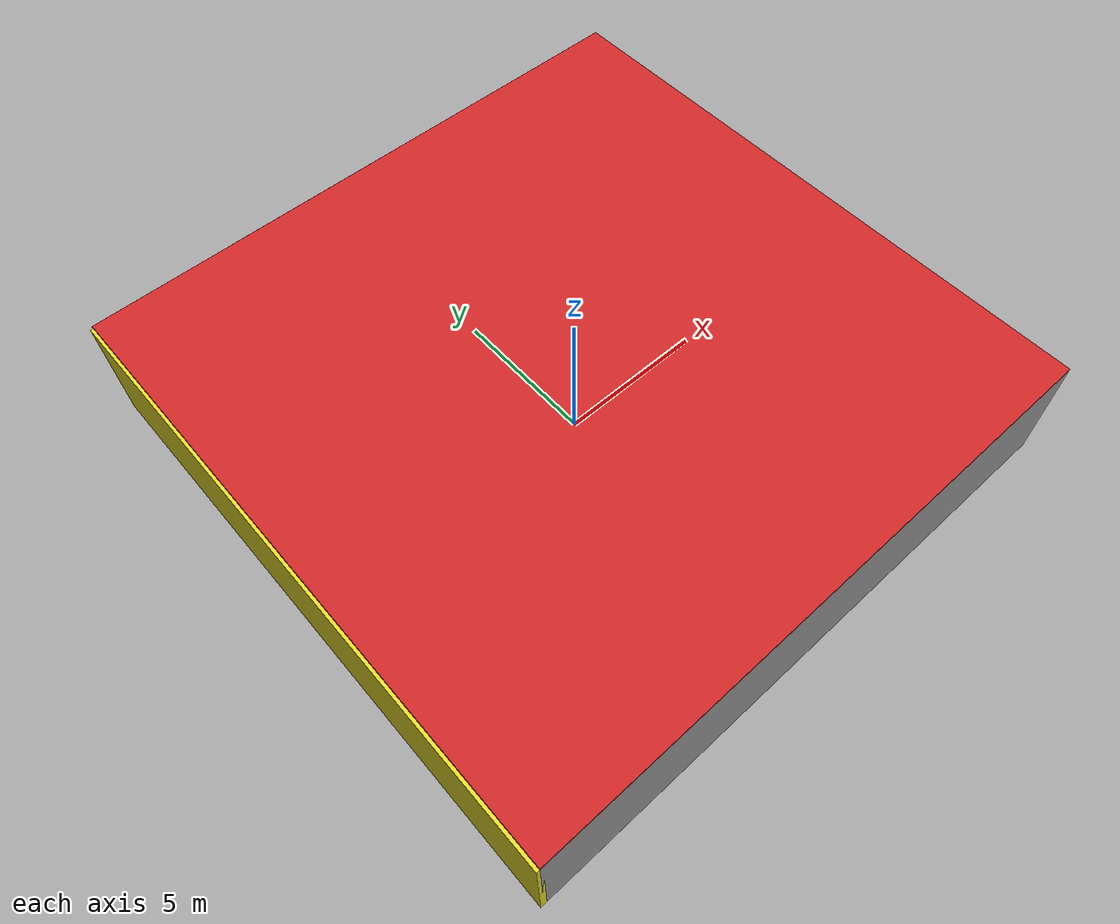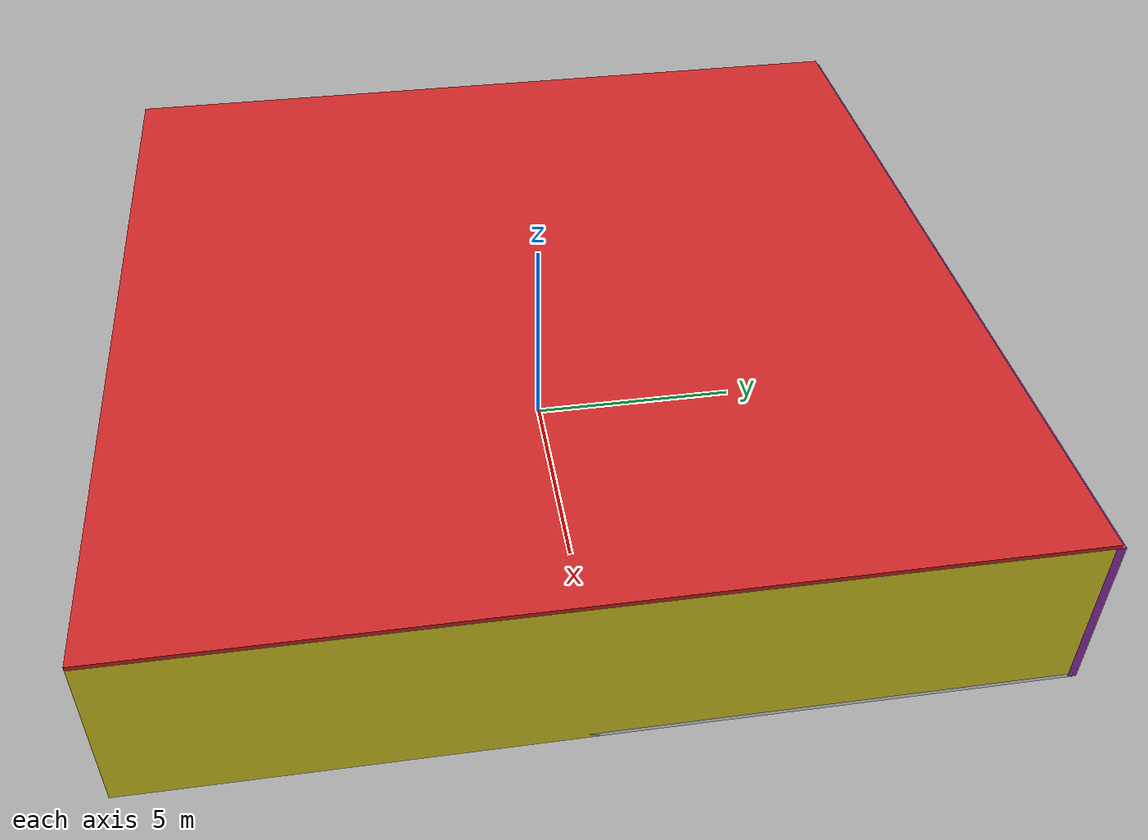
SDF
<sdf version="1.4">
 <world name="default">
  <physics type="ode">
   <max_step_size>0.001</max_step_size>
   <real_time_factor>1</real_time_factor>
   <real_time_update_rate>1000</real_time_update_rate>
   <gravity>0 0 -9.8</gravity>
  </physics>
  <scene><ambient>0.4 0.4 0.4 1</ambient><background>0.7 0.7 0.7 1</background><shadows>1</shadows></scene>
  <model name="Surrounding">
   <static>1</static>
   <link name="Ceiling">
    <collision name="Ceiling_Collision"><geometry><box><size>20 20 0.1</size></box></geometry></collision>
    <visual name="Ceiling_Visual">
     <geometry><box><size>20 20 0.1</size></box></geometry>
     <material>
      <script><uri>file://media/materials/scripts/gazebo.material</uri><name>Gazebo/RedBright</name></script>
     </material>
    </visual>
    <pose>0 0 4.05 0 0 0</pose>
   </link>
   <link name="Wall_South">
    <collision name="Wall_South_Collision">
     <geometry><box><size>20 0 4</size></box></geometry>
     <pose>0 0 2 0 -0 0</pose>
    </collision>
    <visual name="Wall_South_Visual">
     <pose>0 0 2 0 -0 0</pose>
     <geometry><box><size>20 0 4</size></box></geometry>
     <material>
      <script><uri>file://media/materials/scripts/gazebo.material</uri><name>Gazebo/Grey</name></script>
     </material>
    </visual>
    <velocity_decay><linear>0</linear><angular>0</angular></velocity_decay>
    <pose>0 -10 0 0 -0 0</pose>
   </link>
   <link name="Wall_East">
    <collision name="Wall_21_Collision">
     <geometry><box><size>20 0 4</size></box></geometry>
     <pose>0 0 2 0 -0 0</pose>
    </collision>
    <visual name="Wall_21_Visual">
     <pose>0 0 2 0 -0 0</pose>
     <geometry><box><size>20 0 4</size></box></geometry>
     <material>
      <script><uri>file://media/materials/scripts/gazebo.material</uri><name>Gazebo/YellowGlow</name></script>
     </material>
    </visual>
    <velocity_decay><linear>0</linear><angular>0</angular></velocity_decay>
    <pose>10 0 0 0 -0 1.5708</pose>
   </link>
   <link name="Wall_North">
    <collision name="Wall_22_Collision">
     <geometry><box><size>20 0.2 4</size></box></geometry>
     <pose>0 0 2 0 -0 0</pose>
    </collision>
    <visual name="Wall_22_Visual">
     <pose>0 0 2 0 -0 0</pose>
     <geometry><box><size>20 0.2 4</size></box></geometry>
     <material>
      <script><uri>file://media/materials/scripts/gazebo.material</uri><name>Gazebo/Purple</name></script>
     </material>
    </visual>
    <velocity_decay><linear>0</linear><angular>0</angular></velocity_decay>
    <pose>0 10 0 0 -0 0</pose>
   </link>
   <link name="Wall_West">
    <collision name="Wall_23_Collision">
     <geometry><box><size>20 0.2 4</size></box></geometry>
     <pose>0 0 2 0 -0 0</pose>
    </collision>
    <visual name="Wall_23_Visual">
     <pose>0 0 2 0 -0 0</pose>
     <geometry><box><size>20 0.2 4</size></box></geometry>
     <material>
      <script><uri>file://media/materials/scripts/gazebo.material</uri><name>Gazebo/Yellow</name></script>
     </material>
    </visual>
    <velocity_decay><linear>0</linear><angular>0</angular></velocity_decay>
    <pose>-10 0 0 0 0 -1.5708</pose>
   </link>
   <link name="Ground_link">
    <collision name="collision">
     <pose>0 0 .05 0 -0 0</pose>
     <geometry><box><size>20 20 0.1</size></box></geometry>
    </collision>
    <visual name="visual">
     <pose>0 0 .05 0 -0 0</pose>
     <geometry><box><size>20 20 0.1</size></box></geometry>
     <material>
      <script><uri>file://media/materials/scripts/gazebo.material</uri><name>Gazebo/White</name></script>
     </material>
    </visual>
   </link>
   <static>1</static>
  </model>
  <spherical_coordinates>
   <surface_model>EARTH_WGS84</surface_model>
   <latitude_deg>0</latitude_deg>
   <longitude_deg>0</longitude_deg>
   <elevation>0</elevation>
   <heading_deg>0</heading_deg>
  </spherical_coordinates>
  <light name="lightball_0" type="diffuse">
   <diffuse>0.8 0.8 0.8 1</diffuse>
   <specular>0.2 0.2 0.2 1</specular>
   <attenuation>
    <range>100</range>
    <constant>0.7</constant>
    <linear>0.01</linear>
    <quadratic>0.001</quadratic>
   </attenuation>
   <direction>-0.5 0.1 -0.9</direction>
   <pose>9.40558228598 7.40540488776 3.46975615936 0 0 0</pose>
  </light>
  <light name="lightball_1" type="diffuse">
   <diffuse>0.8 0.8 0.8 1</diffuse>
   <specular>0.2 0.2 0.2 1</specular>
   <attenuation>
    <range>100</range>
    <constant>0.7</constant>
    <linear>0.01</linear>
    <quadratic>0.001</quadratic>
   </attenuation>
   <direction>-0.5 0.1 -0.9</direction>
   <pose>-5.21734828689 0.446327351395 0.800126857207 0 0 0</pose>
  </light>
  <light name="lightball_2" type="diffuse">
   <diffuse>0.8 0.8 0.8 1</diffuse>
   <specular>0.2 0.2 0.2 1</specular>
   <attenuation>
    <range>100</range>
    <constant>0.7</constant>
    <linear>0.01</linear>
    <quadratic>0.001</quadratic>
   </attenuation>
   <direction>-0.5 0.1 -0.9</direction>
   <pose>7.83711087974 9.17049826161 1.20874552033 0 0 0</pose>
  </light>
  <light name="lightball_3" type="diffuse">
   <diffuse>0.8 0.8 0.8 1</diffuse>
   <specular>0.2 0.2 0.2 1</specular>
   <attenuation>
    <range>100</range>
    <constant>0.7</constant>
    <linear>0.01</linear>
    <quadratic>0.001</quadratic>
   </attenuation>
   <direction>-0.5 0.1 -0.9</direction>
   <pose>1.84700635015 2.24955745604 2.62586577518 0 0 0</pose>
  </light>
  <include>
   <uri>model://construction_cone</uri>
   <pose>-5.23231056769 -1.82991253177 0 0 0 2.86806226825</pose>
  </include>
  <include>
   <uri>model://robocup_3Dsim_goal</uri>
   <pose>-5.20304556761 3.79578258036 0 0 0 2.61214604812</pose>
  </include>
  <include>
   <uri>model://robocup_3Dsim_goal</uri>
   <pose>-1.20340542761 -3.95590082678 0 0 0 1.01017765749</pose>
  </include>
  <include><uri>model://table</uri><pose>-0.937763986827 1.55155957195 0 0 0 1.80826030937</pose></include>
  <include><uri>model://cabinet</uri><pose>2.18650311235 6.88598902592 0 0 0 2.35801097751</pose></include>
  <include>
   <uri>model://robocup_3Dsim_goal</uri>
   <pose>8.0814111362 5.27904968461 0 0 0 2.34992217822</pose>
  </include>
 </world>
</sdf>

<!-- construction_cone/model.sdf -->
<sdf version="1.5">
  <model name="Construction Cone">
    <link name="link">
      <collision name="collision">
        <geometry>
          <mesh>
            <scale>10 10 10</scale>
            <uri>file://isr-testbed/construction_cone/meshes/construction_cone.dae</uri>
          </mesh>
        </geometry>
      </collision>
      <visual name="visual">
        <geometry>
          <mesh>
            <scale>10 10 10</scale>
            <uri>file://isr-testbed/construction_cone/meshes/construction_cone.dae</uri>
          </mesh>
        </geometry>
      </visual>
    </link>
  </model>
</sdf>

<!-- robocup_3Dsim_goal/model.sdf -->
<sdf version="1.5">
  <model name="robocup_3d_goal">
    <static>true</static>
    <link name="left_post">
      <pose>0 1.05 0.45 0 0 0</pose>
      <collision name="collision">
        <geometry>
          <cylinder>
            <radius>0.05</radius>
            <length>0.9</length>
          </cylinder>
        </geometry>
      </collision>
      <visual name="visual">
        <geometry>
          <cylinder>
            <radius>0.05</radius>
            <length>0.9</length>
          </cylinder>
        </geometry>
        <material>
          <script>
            <uri>file://media/materials/scripts/gazebo.material</uri>
            <name>Gazebo/ZincYellow</name>
          </script>
        </material>
      </visual>
    </link>
    <link name="left_support_horiz_lower">
      <pose>0.30 1.05 0.01 0 0 0</pose>
      <collision name="collision">
        <geometry>
          <box>
            <size>0.50 0.02 0.02</size>
          </box>
        </geometry>
      </collision>
      <visual name="visual">
        <geometry>
          <box>
            <size>0.50 0.02 0.02</size>
          </box>
        </geometry>
        <material>
          <script>
            <uri>file://media/materials/scripts/gazebo.material</uri>
            <name>Gazebo/White</name>
          </script>
        </material>
      </visual>
    </link>
    <link name="left_support_horiz_upper">
      <pose>0.30 1.05 0.79 0 0 0</pose>
      <collision name="collision">
        <geometry>
          <box>
            <size>0.50 0.02 0.02</size>
          </box>
        </geometry>
      </collision>
      <visual name="visual">
        <geometry>
          <box>
            <size>0.50 0.02 0.02</size>
          </box>
        </geometry>
        <material>
          <script>
            <uri>file://media/materials/scripts/gazebo.material</uri>
            <name>Gazebo/White</name>
          </script>
        </material>
      </visual>
    </link>
    <link name="left_support_vertical">
      <pose>0.56 1.05 0.4 0 1.5708 0</pose>
      <collision name="collision">
        <geometry>
          <box>
            <size>0.80 0.02 0.02</size>
          </box>
        </geometry>
      </collision>
      <visual name="visual">
        <geometry>
          <box>
            <size>0.80 0.02 0.02</size>
          </box>
        </geometry>
        <material>
          <script>
            <uri>file://media/materials/scripts/gazebo.material</uri>
            <name>Gazebo/White</name>
          </script>
        </material>
      </visual>
    </link>
    <link name="right_support_horiz_lower">
      <pose>0.30 -1.05 0.01 0 0 0</pose>
      <collision name="collision">
        <geometry>
          <box>
            <size>0.50 0.02 0.02</size>
          </box>
        </geometry>
      </collision>
      <visual name="visual">
        <geometry>
          <box>
            <size>0.50 0.02 0.02</size>
          </box>
        </geometry>
        <material>
          <script>
            <uri>file://media/materials/scripts/gazebo.material</uri>
            <name>Gazebo/White</name>
          </script>
        </material>
      </visual>
    </link>
    <link name="right_support_horiz_upper">
      <pose>0.30 -1.05 0.79 0 0 0</pose>
      <collision name="collision">
        <geometry>
          <box>
            <size>0.50 0.02 0.02</size>
          </box>
        </geometry>
      </collision>
      <visual name="visual">
        <geometry>
          <box>
            <size>0.50 0.02 0.02</size>
          </box>
        </geometry>
        <material>
          <script>
            <uri>file://media/materials/scripts/gazebo.material</uri>
            <name>Gazebo/White</name>
          </script>
        </material>
      </visual>
    </link>
    <link name="right_support_vertical">
      <pose>0.56 -1.05 0.4 0 1.5708 0</pose>
      <collision name="collision">
        <geometry>
          <box>
            <size>0.80 0.02 0.02</size>
          </box>
        </geometry>
      </collision>
      <visual name="visual">
        <geometry>
          <box>
            <size>0.80 0.02 0.02</size>
          </box>
        </geometry>
        <material>
          <script>
            <uri>file://media/materials/scripts/gazebo.material</uri>
            <name>Gazebo/White</name>
          </script>
        </material>
      </visual>
    </link>
    <link name="center_support_horiz_lower">
      <pose>0.56 0 0.01 0 1.5708 0</pose>
      <collision name="collision">
        <geometry>
          <box>
            <size>0.02 2.08 0.02</size>
          </box>
        </geometry>
      </collision>
      <visual name="visual">
        <geometry>
          <box>
            <size>0.02 2.08 0.02</size>
          </box>
        </geometry>
        <material>
          <script>
            <uri>file://media/materials/scripts/gazebo.material</uri>
            <name>Gazebo/White</name>
          </script>
        </material>
      </visual>
    </link>
    <link name="center_support_horiz_upper">
      <pose>0.56 0 0.79 0 1.5708 0</pose>
      <collision name="collision">
        <geometry>
          <box>
            <size>0.02 2.08 0.02</size>
          </box>
        </geometry>
      </collision>
      <visual name="visual">
        <geometry>
          <box>
            <size>0.02 2.08 0.02</size>
          </box>
        </geometry>
        <material>
          <script>
            <uri>file://media/materials/scripts/gazebo.material</uri>
            <name>Gazebo/White</name>
          </script>
        </material>
      </visual>
    </link>
    <link name="right_post">
      <pose>0 -1.05 0.45 0 0 0</pose>
      <collision name="collision">
        <geometry>
          <cylinder>
            <radius>0.05</radius>
            <length>0.9</length>
          </cylinder>
        </geometry>
      </collision>
      <visual name="visual">
        <geometry>
          <cylinder>
            <radius>0.05</radius>
            <length>0.9</length>
          </cylinder>
        </geometry>
        <material>
          <script>
            <uri>file://media/materials/scripts/gazebo.material</uri>
            <name>Gazebo/ZincYellow</name>
          </script>
        </material>
      </visual>
    </link>
    <link name="crossbar">
      <pose>0 0 0.85 1.57 1.57 0</pose>
      <collision name="collision">
        <geometry>
          <cylinder>
            <radius>0.05</radius>
            <length>2.0</length>
          </cylinder>
        </geometry>
      </collision>
      <visual name="visual">
        <geometry>
          <cylinder>
            <radius>0.05</radius>
            <length>2.0</length>
          </cylinder>
        </geometry>
        <material>
          <script>
            <uri>file://media/materials/scripts/gazebo.material</uri>
            <name>Gazebo/ZincYellow</name>
          </script>
        </material>
      </visual>
    </link>
    <link name="center_net">
      <pose>0.56 0 0.40 0 0 0</pose>
      <collision name="collision">
        <geometry>
          <box>
            <size>0.01 2.1 0.80</size>
          </box>
        </geometry>
      </collision>
      <visual name="visual">
        <geometry>
          <box>
            <size>0.01 2.1 0.80</size>
          </box>
        </geometry>
        <material>
          <script>
            <uri>model://../model_source/models/robocup09_spl_field/materials/scripts/</uri>
            <uri>model://../model_source/models/robocup09_spl_field/materials/textures/</uri>
            <name>RoboCup/Net</name>
          </script>
        </material>
      </visual>
    </link>
    <link name="left_net">
      <pose>0.30 1.05 0.40 0 0 0</pose>
      <collision name="collision">
        <geometry>
          <box>
            <size>0.50 0.01 0.76</size>
          </box>
        </geometry>
      </collision>
      <visual name="visual">
        <geometry>
          <box>
            <size>0.50 0.01 0.76</size>
          </box>
        </geometry>
        <material>
          <script>
            <uri>model://../model_source/models/robocup09_spl_field/materials/scripts/</uri>
            <uri>model://../model_source/models/robocup09_spl_field/materials/textures/</uri>
            <name>RoboCup/Net</name>
          </script>
        </material>
      </visual>
    </link>
    <link name="right_net">
      <pose>0.30 -1.05 0.40 0 0 0</pose>
      <collision name="collision">
        <geometry>
          <box>
            <size>0.50 0.01 0.76</size>
          </box>
        </geometry>
      </collision>
      <visual name="visual">
        <geometry>
          <box>
            <size>0.50 0.01 0.76</size>
          </box>
        </geometry>
        <material>
          <script>
            <uri>model://../model_source/models/robocup09_spl_field/materials/scripts/</uri>
            <uri>model://../model_source/models/robocup09_spl_field/materials/textures/</uri>
            <name>RoboCup/Net</name>
          </script>
        </material>
      </visual>
    </link>
  </model>
</sdf>

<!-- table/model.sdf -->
<sdf version="1.5">
  <model name="table">
    <static>true</static>
    <link name="link">
      <collision name="surface">
        <pose>0 0 1.0 0 0 0</pose>
        <geometry>
          <box>
            <size>1.5 0.8 0.03</size>
          </box>
        </geometry>
        <surface>
          <friction>
            <ode>
              <mu>0.6</mu>
              <mu2>0.6</mu2>
            </ode>
          </friction>
        </surface>
      </collision>
      <visual name="visual1">
        <pose>0 0 1.0 0 0 0</pose>
        <geometry>
          <box>
            <size>1.5 0.8 0.03</size>
          </box>
        </geometry>
        <material>
          <script>
            <uri>model://media/materials/scripts/gazebo.material</uri>
            <name>Gazebo/Wood</name>
          </script>
        </material>
      </visual>
      <collision name="front_left_leg">
        <pose>0.68 0.38 0.5 0 0 0</pose>
        <geometry>
          <cylinder>
            <radius>0.02</radius>
            <length>1.0</length>
          </cylinder>
        </geometry>
      </collision>
      <visual name="front_left_leg">
        <pose>0.68 0.38 0.5 0 0 0</pose>
        <geometry>
          <cylinder>
            <radius>0.02</radius>
            <length>1.0</length>
          </cylinder>
        </geometry>
        <material>
          <script>
            <uri>model://media/materials/scripts/gazebo.material</uri>
            <name>Gazebo/Grey</name>
          </script>
        </material>
      </visual>
      <collision name="front_right_leg">
        <pose>0.68 -0.38 0.5 0 0 0</pose>
        <geometry>
          <cylinder>
            <radius>0.02</radius>
            <length>1.0</length>
          </cylinder>
        </geometry>
      </collision>
      <visual name="front_right_leg">
        <pose>0.68 -0.38 0.5 0 0 0</pose>
        <geometry>
          <cylinder>
            <radius>0.02</radius>
            <length>1.0</length>
          </cylinder>
        </geometry>
        <material>
          <script>
            <uri>model://media/materials/scripts/gazebo.material</uri>
            <name>Gazebo/Grey</name>
          </script>
        </material>
      </visual>
      <collision name="back_right_leg">
        <pose>-0.68 -0.38 0.5 0 0 0</pose>
        <geometry>
          <cylinder>
            <radius>0.02</radius>
            <length>1.0</length>
          </cylinder>
        </geometry>
      </collision>
      <visual name="back_right_leg">
        <pose>-0.68 -0.38 0.5 0 0 0</pose>
        <geometry>
          <cylinder>
            <radius>0.02</radius>
            <length>1.0</length>
          </cylinder>
        </geometry>
        <material>
          <script>
            <uri>model://media/materials/scripts/gazebo.material</uri>
            <name>Gazebo/Grey</name>
          </script>
        </material>
      </visual>
      <collision name="back_left_leg">
        <pose>-0.68 0.38 0.5 0 0 0</pose>
        <geometry>
          <cylinder>
            <radius>0.02</radius>
            <length>1.0</length>
          </cylinder>
        </geometry>
      </collision>
      <visual name="back_left_leg">
        <pose>-0.68 0.38 0.5 0 0 0</pose>
        <geometry>
          <cylinder>
            <radius>0.02</radius>
            <length>1.0</length>
          </cylinder>
        </geometry>
        <material>
          <script>
            <uri>model://media/materials/scripts/gazebo.material</uri>
            <name>Gazebo/Grey</name>
          </script>
        </material>
      </visual>
    </link>
  </model>
</sdf>

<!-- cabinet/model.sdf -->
<sdf version="1.5">
  <model name="cabinet">
    <static>true</static>
    <link name="cabinet_bottom_plate">
      <inertial>
        <pose>0 0 -1 0 0 0</pose>
        <inertia>
          <ixx>2.050000</ixx>
          <ixy>0</ixy>
          <ixz>0</ixz>
          <iyy>2.050000</iyy>
          <iyz>0</iyz>
          <izz>2.050000</izz>
        </inertia>
        <mass>25.000000</mass>
      </inertial>
      <collision name="cabinet_bottom_plate_geom">
        <pose>0 0 0.010000 0 0 0</pose>
        <geometry>
          <box>
            <size>0.450000 0.450000 0.020000</size>
          </box>
        </geometry>
      </collision>
      <visual name="cabinet_bottom_plate_geom_visual">
        <pose>0 0 0.010000 0 0 0</pose>
        <geometry>
          <box>
            <size>0.450000 0.450000 0.020000</size>
          </box>
        </geometry>
        <material>
          <script>
            <uri>model://media/materials/scripts/gazebo.material</uri>
            <name>Gazebo/Wood</name>
          </script>
        </material>
      </visual>
      <collision name="cabinet_bottom_plate_geom_cabinet_back_plate">
        <pose>0.235000 0 0.510000 0 0 0</pose>
        <geometry>
          <box>
            <size>0.020000 0.450000 1.020000</size>
          </box>
        </geometry>
      </collision>
      <visual name="cabinet_bottom_plate_geom_cabinet_back_plate_visual">
        <pose>0.235000 0 0.510000 0 0 0</pose>
        <geometry>
          <box>
            <size>0.020000 0.450000 1.020000</size>
          </box>
        </geometry>
        <material>
          <script>
            <uri>model://media/materials/scripts/gazebo.material</uri>
            <name>Gazebo/Wood</name>
          </script>
        </material>
      </visual>
      <collision name="cabinet_bottom_plate_geom_cabinet_left_plate">
        <pose>0 0.235000 0.510000 0 0 0</pose>
        <geometry>
          <box>
            <size>0.450000 0.020000 1.020000</size>
          </box>
        </geometry>
      </collision>
      <visual name="cabinet_bottom_plate_geom_cabinet_left_plate_visual">
        <pose>0 0.235000 0.510000 0 0 0</pose>
        <geometry>
          <box>
            <size>0.450000 0.020000 1.020000</size>
          </box>
        </geometry>
        <material>
          <script>
            <uri>model://media/materials/scripts/gazebo.material</uri>
            <name>Gazebo/Wood</name>
          </script>
        </material>
      </visual>
      <collision name="cabinet_bottom_plate_geom_cabinet_middle_plate">
        <pose>0 0 0.510000 0 0 0</pose>
        <geometry>
          <box>
            <size>0.450000 0.450000 0.020000</size>
          </box>
        </geometry>
      </collision>
      <visual name="cabinet_bottom_plate_geom_cabinet_middle_plate_visual">
        <pose>0 0 0.510000 0 0 0</pose>
        <geometry>
          <box>
            <size>0.450000 0.450000 0.020000</size>
          </box>
        </geometry>
        <material>
          <script>
            <uri>model://media/materials/scripts/gazebo.material</uri>
            <name>Gazebo/Wood</name>
          </script>
        </material>
      </visual>
      <collision name="cabinet_bottom_plate_geom_cabinet_right_plate">
        <pose>0 -0.235000 0.510000 0 0 0</pose>
        <geometry>
          <box>
            <size>0.450000 0.020000 1.020000</size>
          </box>
        </geometry>
      </collision>
      <visual name="cabinet_bottom_plate_geom_cabinet_right_plate_visual">
        <pose>0 -0.235000 0.510000 0 0 0</pose>
        <geometry>
          <box>
            <size>0.450000 0.020000 1.020000</size>
          </box>
        </geometry>
        <material>
          <script>
            <uri>model://media/materials/scripts/gazebo.material</uri>
            <name>Gazebo/Wood</name>
          </script>
        </material>
      </visual>
      <collision name="cabinet_bottom_plate_geom_cabinet_top_plate">
        <pose>0 0 1.010000 0 0 0</pose>
        <geometry>
          <box>
            <size>0.450000 0.450000 0.020000</size>
          </box>
        </geometry>
      </collision>
      <visual name="cabinet_bottom_plate_geom_cabinet_top_plate_visual">
        <pose>0 0 1.010000 0 0 0</pose>
        <geometry>
          <box>
            <size>0.450000 0.450000 0.020000</size>
          </box>
        </geometry>
        <material>
          <script>
            <uri>model://media/materials/scripts/gazebo.material</uri>
            <name>Gazebo/Wood</name>
          </script>
        </material>
      </visual>
    </link>
  </model>
</sdf>
